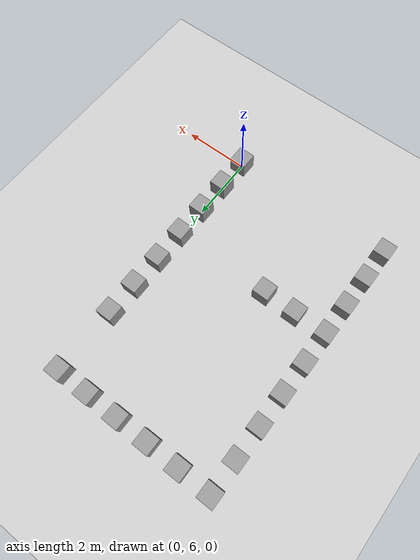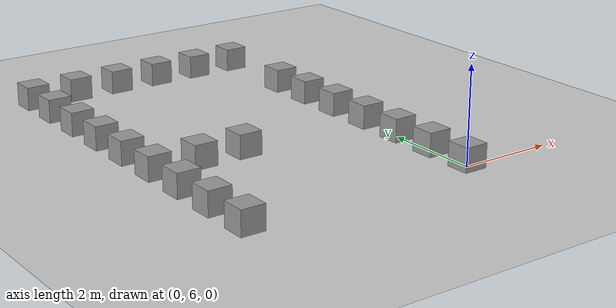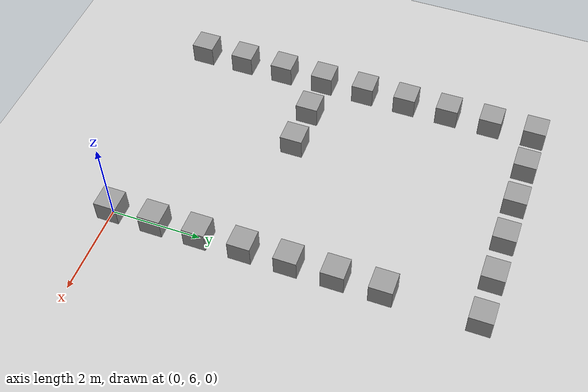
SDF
<sdf version="1.4">
 <world name="default">
  <model name="ground_plane">
   <static>1</static>
   <link name="link">
    <collision name="collision">
     <geometry><plane><normal>0 0 1</normal><size>100 100</size></plane></geometry>
     <surface><friction><ode><mu>100</mu><mu2>50</mu2></ode></friction></surface>
    </collision>
    <visual name="visual">
     <cast_shadows>0</cast_shadows>
     <geometry><plane><normal>0 0 1</normal><size>100 100</size></plane></geometry>
     <material>
      <script><uri>file://media/materials/scripts/gazebo.material</uri><name>Gazebo/Grey</name></script>
     </material>
    </visual>
    <velocity_decay><linear>0</linear><angular>0</angular></velocity_decay>
   </link>
  </model>
  <model name="unit_box_57">
   <pose>0 6 0.25 0 -0 0</pose>
   <static>true</static>
   <link name="link">
    <inertial>
     <mass>1</mass>
     <inertia><ixx>1</ixx><ixy>0</ixy><ixz>0</ixz><iyy>1</iyy><iyz>0</iyz><izz>1</izz></inertia>
    </inertial>
    <collision name="collision"><geometry><box><size>0.5 0.5 0.5</size></box></geometry></collision>
    <visual name="visual">
     <geometry><box><size>0.5 0.5 0.5</size></box></geometry>
     <material>
      <script><uri>file://media/materials/scripts/gazebo.material</uri><name>Gazebo/Grey</name></script>
     </material>
    </visual>
    <velocity_decay><linear>0</linear><angular>0</angular></velocity_decay>
   </link>
   <static>0</static>
  </model>
  <model name="unit_box_58">
   <pose>0 7 0.25 0 -0 0</pose>
   <static>true</static>
   <link name="link">
    <inertial>
     <mass>1</mass>
     <inertia><ixx>1</ixx><ixy>0</ixy><ixz>0</ixz><iyy>1</iyy><iyz>0</iyz><izz>1</izz></inertia>
    </inertial>
    <collision name="collision"><geometry><box><size>0.5 0.5 0.5</size></box></geometry></collision>
    <visual name="visual">
     <geometry><box><size>0.5 0.5 0.5</size></box></geometry>
     <material>
      <script><uri>file://media/materials/scripts/gazebo.material</uri><name>Gazebo/Grey</name></script>
     </material>
    </visual>
    <velocity_decay><linear>0</linear><angular>0</angular></velocity_decay>
   </link>
   <static>0</static>
  </model>
  <model name="unit_box_59">
   <pose>0 8 0.25 0 -0 0</pose>
   <static>true</static>
   <link name="link">
    <inertial>
     <mass>1</mass>
     <inertia><ixx>1</ixx><ixy>0</ixy><ixz>0</ixz><iyy>1</iyy><iyz>0</iyz><izz>1</izz></inertia>
    </inertial>
    <collision name="collision"><geometry><box><size>0.5 0.5 0.5</size></box></geometry></collision>
    <visual name="visual">
     <geometry><box><size>0.5 0.5 0.5</size></box></geometry>
     <material>
      <script><uri>file://media/materials/scripts/gazebo.material</uri><name>Gazebo/Grey</name></script>
     </material>
    </visual>
    <velocity_decay><linear>0</linear><angular>0</angular></velocity_decay>
   </link>
   <static>0</static>
  </model>
  <model name="unit_box_60">
   <pose>0 9 0.25 0 -0 0</pose>
   <static>true</static>
   <link name="link">
    <inertial>
     <mass>1</mass>
     <inertia><ixx>1</ixx><ixy>0</ixy><ixz>0</ixz><iyy>1</iyy><iyz>0</iyz><izz>1</izz></inertia>
    </inertial>
    <collision name="collision"><geometry><box><size>0.5 0.5 0.5</size></box></geometry></collision>
    <visual name="visual">
     <geometry><box><size>0.5 0.5 0.5</size></box></geometry>
     <material>
      <script><uri>file://media/materials/scripts/gazebo.material</uri><name>Gazebo/Grey</name></script>
     </material>
    </visual>
    <velocity_decay><linear>0</linear><angular>0</angular></velocity_decay>
   </link>
   <static>0</static>
  </model>
  <model name="unit_box_61">
   <pose>-5 6 0.25 0 -0 0</pose>
   <static>true</static>
   <link name="link">
    <inertial>
     <mass>1</mass>
     <inertia><ixx>1</ixx><ixy>0</ixy><ixz>0</ixz><iyy>1</iyy><iyz>0</iyz><izz>1</izz></inertia>
    </inertial>
    <collision name="collision"><geometry><box><size>0.5 0.5 0.5</size></box></geometry></collision>
    <visual name="visual">
     <geometry><box><size>0.5 0.5 0.5</size></box></geometry>
     <material>
      <script><uri>file://media/materials/scripts/gazebo.material</uri><name>Gazebo/Grey</name></script>
     </material>
    </visual>
    <velocity_decay><linear>0</linear><angular>0</angular></velocity_decay>
   </link>
   <static>0</static>
  </model>
  <model name="unit_box_62">
   <pose>0 10 0.25 0 -0 0</pose>
   <static>true</static>
   <link name="link">
    <inertial>
     <mass>1</mass>
     <inertia><ixx>1</ixx><ixy>0</ixy><ixz>0</ixz><iyy>1</iyy><iyz>0</iyz><izz>1</izz></inertia>
    </inertial>
    <collision name="collision"><geometry><box><size>0.5 0.5 0.5</size></box></geometry></collision>
    <visual name="visual">
     <geometry><box><size>0.5 0.5 0.5</size></box></geometry>
     <material>
      <script><uri>file://media/materials/scripts/gazebo.material</uri><name>Gazebo/Grey</name></script>
     </material>
    </visual>
    <velocity_decay><linear>0</linear><angular>0</angular></velocity_decay>
   </link>
   <static>0</static>
  </model>
  <model name="unit_box_63">
   <pose>0 11 0.25 0 -0 0</pose>
   <static>true</static>
   <link name="link">
    <inertial>
     <mass>1</mass>
     <inertia><ixx>1</ixx><ixy>0</ixy><ixz>0</ixz><iyy>1</iyy><iyz>0</iyz><izz>1</izz></inertia>
    </inertial>
    <collision name="collision"><geometry><box><size>0.5 0.5 0.5</size></box></geometry></collision>
    <visual name="visual">
     <geometry><box><size>0.5 0.5 0.5</size></box></geometry>
     <material>
      <script><uri>file://media/materials/scripts/gazebo.material</uri><name>Gazebo/Grey</name></script>
     </material>
    </visual>
    <velocity_decay><linear>0</linear><angular>0</angular></velocity_decay>
   </link>
   <static>0</static>
  </model>
  <model name="unit_box_64">
   <pose>0 12 0.25 0 -0 0</pose>
   <static>true</static>
   <link name="link">
    <inertial>
     <mass>1</mass>
     <inertia><ixx>1</ixx><ixy>0</ixy><ixz>0</ixz><iyy>1</iyy><iyz>0</iyz><izz>1</izz></inertia>
    </inertial>
    <collision name="collision"><geometry><box><size>0.5 0.5 0.5</size></box></geometry></collision>
    <visual name="visual">
     <geometry><box><size>0.5 0.5 0.5</size></box></geometry>
     <material>
      <script><uri>file://media/materials/scripts/gazebo.material</uri><name>Gazebo/Grey</name></script>
     </material>
    </visual>
    <velocity_decay><linear>0</linear><angular>0</angular></velocity_decay>
   </link>
   <static>0</static>
  </model>
  <model name="unit_box_65232">
   <pose>-4 14 0.25 0 -0 0</pose>
   <static>true</static>
   <link name="link">
    <inertial>
     <mass>1</mass>
     <inertia><ixx>1</ixx><ixy>0</ixy><ixz>0</ixz><iyy>1</iyy><iyz>0</iyz><izz>1</izz></inertia>
    </inertial>
    <collision name="collision"><geometry><box><size>0.5 0.5 0.5</size></box></geometry></collision>
    <visual name="visual">
     <geometry><box><size>0.5 0.5 0.5</size></box></geometry>
     <material>
      <script><uri>file://media/materials/scripts/gazebo.material</uri><name>Gazebo/Grey</name></script>
     </material>
    </visual>
    <velocity_decay><linear>0</linear><angular>0</angular></velocity_decay>
   </link>
   <static>0</static>
  </model>
  <model name="unit_box_6533">
   <pose>-3 14 0.25 0 -0 0</pose>
   <static>true</static>
   <link name="link">
    <inertial>
     <mass>1</mass>
     <inertia><ixx>1</ixx><ixy>0</ixy><ixz>0</ixz><iyy>1</iyy><iyz>0</iyz><izz>1</izz></inertia>
    </inertial>
    <collision name="collision"><geometry><box><size>0.5 0.5 0.5</size></box></geometry></collision>
    <visual name="visual">
     <geometry><box><size>0.5 0.5 0.5</size></box></geometry>
     <material>
      <script><uri>file://media/materials/scripts/gazebo.material</uri><name>Gazebo/Grey</name></script>
     </material>
    </visual>
    <velocity_decay><linear>0</linear><angular>0</angular></velocity_decay>
   </link>
   <static>0</static>
  </model>
  <model name="unit_box_6588">
   <pose>-2 14 0.25 0 -0 0</pose>
   <static>true</static>
   <link name="link">
    <inertial>
     <mass>1</mass>
     <inertia><ixx>1</ixx><ixy>0</ixy><ixz>0</ixz><iyy>1</iyy><iyz>0</iyz><izz>1</izz></inertia>
    </inertial>
    <collision name="collision"><geometry><box><size>0.5 0.5 0.5</size></box></geometry></collision>
    <visual name="visual">
     <geometry><box><size>0.5 0.5 0.5</size></box></geometry>
     <material>
      <script><uri>file://media/materials/scripts/gazebo.material</uri><name>Gazebo/Grey</name></script>
     </material>
    </visual>
    <velocity_decay><linear>0</linear><angular>0</angular></velocity_decay>
   </link>
   <static>0</static>
  </model>
  <model name="unit_box_6599">
   <pose>-1 14 0.25 0 -0 0</pose>
   <static>true</static>
   <link name="link">
    <inertial>
     <mass>1</mass>
     <inertia><ixx>1</ixx><ixy>0</ixy><ixz>0</ixz><iyy>1</iyy><iyz>0</iyz><izz>1</izz></inertia>
    </inertial>
    <collision name="collision"><geometry><box><size>0.5 0.5 0.5</size></box></geometry></collision>
    <visual name="visual">
     <geometry><box><size>0.5 0.5 0.5</size></box></geometry>
     <material>
      <script><uri>file://media/materials/scripts/gazebo.material</uri><name>Gazebo/Grey</name></script>
     </material>
    </visual>
    <velocity_decay><linear>0</linear><angular>0</angular></velocity_decay>
   </link>
   <static>0</static>
  </model>
  <model name="unit_box_650">
   <pose>0 14 0.25 0 -0 0</pose>
   <static>true</static>
   <link name="link">
    <inertial>
     <mass>1</mass>
     <inertia><ixx>1</ixx><ixy>0</ixy><ixz>0</ixz><iyy>1</iyy><iyz>0</iyz><izz>1</izz></inertia>
    </inertial>
    <collision name="collision"><geometry><box><size>0.5 0.5 0.5</size></box></geometry></collision>
    <visual name="visual">
     <geometry><box><size>0.5 0.5 0.5</size></box></geometry>
     <material>
      <script><uri>file://media/materials/scripts/gazebo.material</uri><name>Gazebo/Grey</name></script>
     </material>
    </visual>
    <velocity_decay><linear>0</linear><angular>0</angular></velocity_decay>
   </link>
   <static>0</static>
  </model>
  <model name="unit_box_67">
   <pose>-5 7 0.25 0 -0 0</pose>
   <static>true</static>
   <link name="link">
    <inertial>
     <mass>1</mass>
     <inertia><ixx>1</ixx><ixy>0</ixy><ixz>0</ixz><iyy>1</iyy><iyz>0</iyz><izz>1</izz></inertia>
    </inertial>
    <collision name="collision"><geometry><box><size>0.5 0.5 0.5</size></box></geometry></collision>
    <visual name="visual">
     <geometry><box><size>0.5 0.5 0.5</size></box></geometry>
     <material>
      <script><uri>file://media/materials/scripts/gazebo.material</uri><name>Gazebo/Grey</name></script>
     </material>
    </visual>
    <velocity_decay><linear>0</linear><angular>0</angular></velocity_decay>
   </link>
   <static>0</static>
  </model>
  <model name="unit_box_68">
   <pose>-5 8 0.25 0 -0 0</pose>
   <static>true</static>
   <link name="link">
    <inertial>
     <mass>1</mass>
     <inertia><ixx>1</ixx><ixy>0</ixy><ixz>0</ixz><iyy>1</iyy><iyz>0</iyz><izz>1</izz></inertia>
    </inertial>
    <collision name="collision"><geometry><box><size>0.5 0.5 0.5</size></box></geometry></collision>
    <visual name="visual">
     <geometry><box><size>0.5 0.5 0.5</size></box></geometry>
     <material>
      <script><uri>file://media/materials/scripts/gazebo.material</uri><name>Gazebo/Grey</name></script>
     </material>
    </visual>
    <velocity_decay><linear>0</linear><angular>0</angular></velocity_decay>
   </link>
   <static>0</static>
  </model>
  <model name="unit_box_69">
   <pose>-5 9 0.25 0 -0 0</pose>
   <static>true</static>
   <link name="link">
    <inertial>
     <mass>1</mass>
     <inertia><ixx>1</ixx><ixy>0</ixy><ixz>0</ixz><iyy>1</iyy><iyz>0</iyz><izz>1</izz></inertia>
    </inertial>
    <collision name="collision"><geometry><box><size>0.5 0.5 0.5</size></box></geometry></collision>
    <visual name="visual">
     <geometry><box><size>0.5 0.5 0.5</size></box></geometry>
     <material>
      <script><uri>file://media/materials/scripts/gazebo.material</uri><name>Gazebo/Grey</name></script>
     </material>
    </visual>
    <velocity_decay><linear>0</linear><angular>0</angular></velocity_decay>
   </link>
   <static>0</static>
  </model>
  <model name="unit_box_70">
   <pose>-4 9 0.25 0 -0 0</pose>
   <static>true</static>
   <link name="link">
    <inertial>
     <mass>1</mass>
     <inertia><ixx>1</ixx><ixy>0</ixy><ixz>0</ixz><iyy>1</iyy><iyz>0</iyz><izz>1</izz></inertia>
    </inertial>
    <collision name="collision"><geometry><box><size>0.5 0.5 0.5</size></box></geometry></collision>
    <visual name="visual">
     <geometry><box><size>0.5 0.5 0.5</size></box></geometry>
     <material>
      <script><uri>file://media/materials/scripts/gazebo.material</uri><name>Gazebo/Grey</name></script>
     </material>
    </visual>
    <velocity_decay><linear>0</linear><angular>0</angular></velocity_decay>
   </link>
   <static>0</static>
  </model>
  <model name="unit_box_71">
   <pose>-3 9 0.25 0 -0 0</pose>
   <static>true</static>
   <link name="link">
    <inertial>
     <mass>1</mass>
     <inertia><ixx>1</ixx><ixy>0</ixy><ixz>0</ixz><iyy>1</iyy><iyz>0</iyz><izz>1</izz></inertia>
    </inertial>
    <collision name="collision"><geometry><box><size>0.5 0.5 0.5</size></box></geometry></collision>
    <visual name="visual">
     <geometry><box><size>0.5 0.5 0.5</size></box></geometry>
     <material>
      <script><uri>file://media/materials/scripts/gazebo.material</uri><name>Gazebo/Grey</name></script>
     </material>
    </visual>
    <velocity_decay><linear>0</linear><angular>0</angular></velocity_decay>
   </link>
   <static>0</static>
  </model>
  <model name="unit_box_72">
   <pose>-5 10 0.25 0 -0 0</pose>
   <static>true</static>
   <link name="link">
    <inertial>
     <mass>1</mass>
     <inertia><ixx>1</ixx><ixy>0</ixy><ixz>0</ixz><iyy>1</iyy><iyz>0</iyz><izz>1</izz></inertia>
    </inertial>
    <collision name="collision"><geometry><box><size>0.5 0.5 0.5</size></box></geometry></collision>
    <visual name="visual">
     <geometry><box><size>0.5 0.5 0.5</size></box></geometry>
     <material>
      <script><uri>file://media/materials/scripts/gazebo.material</uri><name>Gazebo/Grey</name></script>
     </material>
    </visual>
    <velocity_decay><linear>0</linear><angular>0</angular></velocity_decay>
   </link>
   <static>0</static>
  </model>
  <model name="unit_box_73">
   <pose>-5 11 0.25 0 -0 0</pose>
   <static>true</static>
   <link name="link">
    <inertial>
     <mass>1</mass>
     <inertia><ixx>1</ixx><ixy>0</ixy><ixz>0</ixz><iyy>1</iyy><iyz>0</iyz><izz>1</izz></inertia>
    </inertial>
    <collision name="collision"><geometry><box><size>0.5 0.5 0.5</size></box></geometry></collision>
    <visual name="visual">
     <geometry><box><size>0.5 0.5 0.5</size></box></geometry>
     <material>
      <script><uri>file://media/materials/scripts/gazebo.material</uri><name>Gazebo/Grey</name></script>
     </material>
    </visual>
    <velocity_decay><linear>0</linear><angular>0</angular></velocity_decay>
   </link>
   <static>0</static>
  </model>
  <model name="unit_box_74">
   <pose>-5 12 0.25 0 -0 0</pose>
   <static>true</static>
   <link name="link">
    <inertial>
     <mass>1</mass>
     <inertia><ixx>1</ixx><ixy>0</ixy><ixz>0</ixz><iyy>1</iyy><iyz>0</iyz><izz>1</izz></inertia>
    </inertial>
    <collision name="collision"><geometry><box><size>0.5 0.5 0.5</size></box></geometry></collision>
    <visual name="visual">
     <geometry><box><size>0.5 0.5 0.5</size></box></geometry>
     <material>
      <script><uri>file://media/materials/scripts/gazebo.material</uri><name>Gazebo/Grey</name></script>
     </material>
    </visual>
    <velocity_decay><linear>0</linear><angular>0</angular></velocity_decay>
   </link>
   <static>0</static>
  </model>
  <model name="unit_box_75">
   <pose>-5 13 0.25 0 -0 0</pose>
   <static>true</static>
   <link name="link">
    <inertial>
     <mass>1</mass>
     <inertia><ixx>1</ixx><ixy>0</ixy><ixz>0</ixz><iyy>1</iyy><iyz>0</iyz><izz>1</izz></inertia>
    </inertial>
    <collision name="collision"><geometry><box><size>0.5 0.5 0.5</size></box></geometry></collision>
    <visual name="visual">
     <geometry><box><size>0.5 0.5 0.5</size></box></geometry>
     <material>
      <script><uri>file://media/materials/scripts/gazebo.material</uri><name>Gazebo/Grey</name></script>
     </material>
    </visual>
    <velocity_decay><linear>0</linear><angular>0</angular></velocity_decay>
   </link>
   <static>0</static>
  </model>
  <model name="unit_box_76">
   <pose>-5 14 0.25 0 -0 0</pose>
   <static>true</static>
   <link name="link">
    <inertial>
     <mass>1</mass>
     <inertia><ixx>1</ixx><ixy>0</ixy><ixz>0</ixz><iyy>1</iyy><iyz>0</iyz><izz>1</izz></inertia>
    </inertial>
    <collision name="collision"><geometry><box><size>0.5 0.5 0.5</size></box></geometry></collision>
    <visual name="visual">
     <geometry><box><size>0.5 0.5 0.5</size></box></geometry>
     <material>
      <script><uri>file://media/materials/scripts/gazebo.material</uri><name>Gazebo/Grey</name></script>
     </material>
    </visual>
    <velocity_decay><linear>0</linear><angular>0</angular></velocity_decay>
   </link>
   <static>0</static>
  </model>
 </world>
</sdf>
